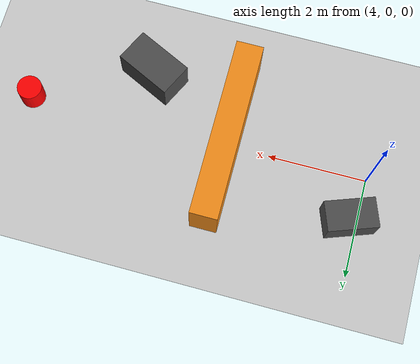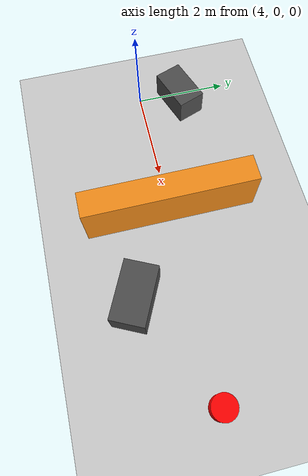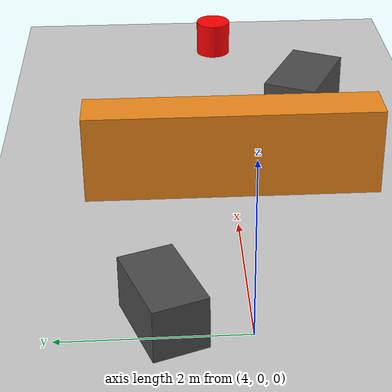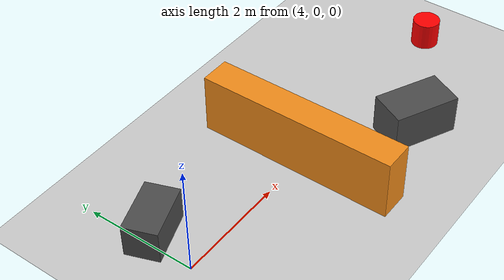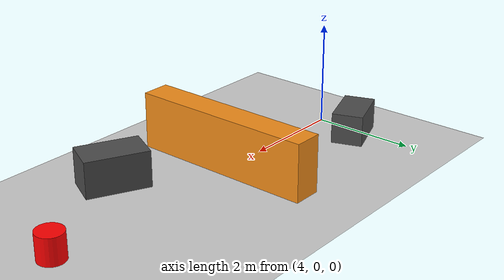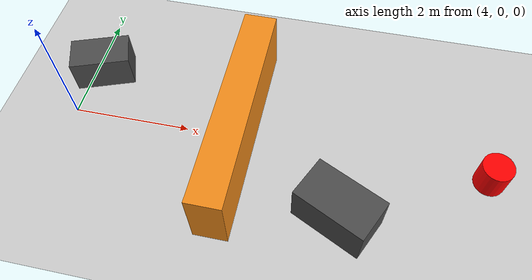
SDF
<?xml version="1.0" ?>
<sdf version="1.5">
  <world name="disaster_scene_c">
    <!-- Transport/ROS bridge is inert for ideal backend and required by RotorS. -->
    <plugin name="rotors_ros_interface_plugin"
            filename="librotors_gazebo_ros_interface_plugin.so" />
    <include>
      <uri>model://sun</uri>
    </include>
    <include>
      <uri>model://ground_plane</uri>
    </include>

    <physics type="ode">
      <max_step_size>0.001</max_step_size>
      <real_time_update_rate>1000</real_time_update_rate>
    </physics>

    <model name="rubble_wall">
      <static>true</static>
      <pose>6.9 0 0.55 0 0 0</pose>
      <link name="link">
        <collision name="collision">
          <geometry><box><size>0.55 3.6 1.10</size></box></geometry>
        </collision>
        <visual name="visual">
          <geometry><box><size>0.55 3.6 1.10</size></box></geometry>
          <material><script><uri>file://media/materials/scripts/gazebo.material</uri><name>Gazebo/Orange</name></script></material>
        </visual>
      </link>
    </model>

    <model name="rubble_chunk_1">
      <static>true</static>
      <pose>4.2 0.9 0.30 0 0 0.35</pose>
      <link name="link">
        <collision name="collision">
          <geometry><box><size>1.0 0.6 0.60</size></box></geometry>
        </collision>
        <visual name="visual">
          <geometry><box><size>1.0 0.6 0.60</size></box></geometry>
          <material><script><uri>file://media/materials/scripts/gazebo.material</uri><name>Gazebo/DarkGrey</name></script></material>
        </visual>
      </link>
    </model>

    <model name="rubble_chunk_2">
      <static>true</static>
      <pose>8.7 -1.1 0.35 0 0 -0.45</pose>
      <link name="link">
        <collision name="collision">
          <geometry><box><size>1.2 0.7 0.70</size></box></geometry>
        </collision>
        <visual name="visual">
          <geometry><box><size>1.2 0.7 0.70</size></box></geometry>
          <material><script><uri>file://media/materials/scripts/gazebo.material</uri><name>Gazebo/DarkGrey</name></script></material>
        </visual>
      </link>
    </model>

    <model name="victim_marker">
      <static>true</static>
      <pose>11 0 0.25 0 0 0</pose>
      <link name="link">
        <visual name="visual">
          <geometry><cylinder><radius>0.25</radius><length>0.5</length></cylinder></geometry>
          <material><ambient>1 0 0 1</ambient><diffuse>1 0 0 1</diffuse></material>
        </visual>
      </link>
    </model>
  </world>
</sdf>
